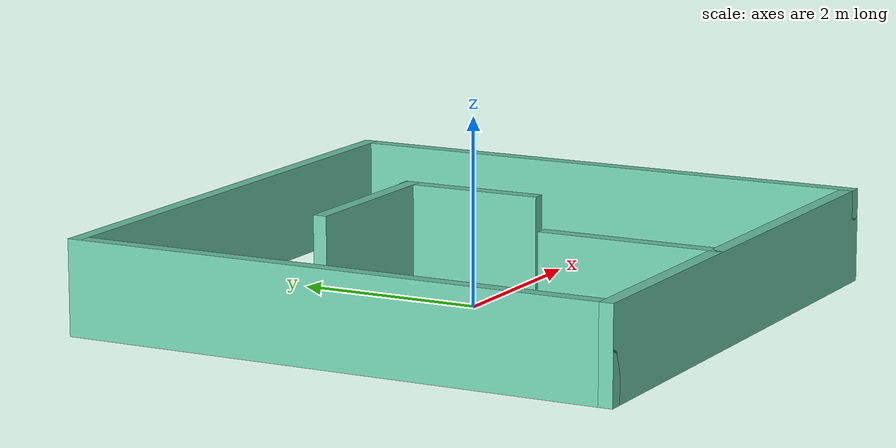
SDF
<?xml version='1.0'?>
<sdf version='1.7'>
  <model name='training_gazebo_place'>
    <pose>-0.006 -0.034 0 0 -0 0</pose>
    <link name='Wall_0'>
      <collision name='Wall_0_Collision'>
        <geometry>
          <box>
            <size>6 0.15 1</size>
          </box>
        </geometry>
        <pose>0 0 0.5 0 -0 0</pose>
      </collision>
      <visual name='Wall_0_Visual'>
        <pose>0 0 0.5 0 -0 0</pose>
        <geometry>
          <box>
            <size>6 0.15 1</size>
          </box>
        </geometry>
        <material>
          <script>
            <uri>file://media/materials/scripts/gazebo.material</uri>
            <name>Gazebo/Grey</name>
          </script>
          <ambient>0.435294 0.796078 0.67451 1</ambient>
        </material>
        <meta>
          <layer>0</layer>
        </meta>
      </visual>
      <pose>0 -2.925 0 0 -0 0</pose>
    </link>
    <link name='Wall_14'>
      <collision name='Wall_14_Collision'>
        <geometry>
          <box>
            <size>2 0.15 1</size>
          </box>
        </geometry>
        <pose>0 0 0.5 0 -0 0</pose>
      </collision>
      <visual name='Wall_14_Visual'>
        <pose>0 0 0.5 0 -0 0</pose>
        <geometry>
          <box>
            <size>2 0.15 1</size>
          </box>
        </geometry>
        <material>
          <script>
            <uri>file://media/materials/scripts/gazebo.material</uri>
            <name>Gazebo/Grey</name>
          </script>
          <ambient>0.435294 0.796078 0.67451 1</ambient>
        </material>
        <meta>
          <layer>0</layer>
        </meta>
      </visual>
      <pose>0.12408 1.34848 0 0 -0 0</pose>
    </link>
    <link name='Wall_15'>
      <collision name='Wall_15_Collision'>
        <geometry>
          <box>
            <size>1.62424 0.15 1</size>
          </box>
        </geometry>
        <pose>0 0 0.5 0 -0 0</pose>
      </collision>
      <visual name='Wall_15_Visual'>
        <pose>0 0 0.5 0 -0 0</pose>
        <geometry>
          <box>
            <size>1.62424 0.15 1</size>
          </box>
        </geometry>
        <material>
          <script>
            <uri>file://media/materials/scripts/gazebo.material</uri>
            <name>Gazebo/Grey</name>
          </script>
          <ambient>0.435294 0.796078 0.67451 1</ambient>
        </material>
        <meta>
          <layer>0</layer>
        </meta>
      </visual>
      <pose>1.05783 0.629147 0 0 -0 -1.55893</pose>
    </link>
    <link name='Wall_2'>
      <collision name='Wall_2_Collision'>
        <geometry>
          <box>
            <size>6 0.15 1</size>
          </box>
        </geometry>
        <pose>0 0 0.5 0 -0 0</pose>
      </collision>
      <visual name='Wall_2_Visual'>
        <pose>0 0 0.5 0 -0 0</pose>
        <geometry>
          <box>
            <size>6 0.15 1</size>
          </box>
        </geometry>
        <material>
          <script>
            <uri>file://media/materials/scripts/gazebo.material</uri>
            <name>Gazebo/Grey</name>
          </script>
          <ambient>0.435294 0.796078 0.67451 1</ambient>
        </material>
        <meta>
          <layer>0</layer>
        </meta>
      </visual>
      <pose>-2.925 -0 0 0 -0 1.5708</pose>
    </link>
    <link name='Wall_3'>
      <collision name='Wall_3_Collision'>
        <geometry>
          <box>
            <size>6 0.15 1</size>
          </box>
        </geometry>
        <pose>0 0 0.5 0 -0 0</pose>
      </collision>
      <visual name='Wall_3_Visual'>
        <pose>0 0 0.5 0 -0 0</pose>
        <geometry>
          <box>
            <size>6 0.15 1</size>
          </box>
        </geometry>
        <material>
          <script>
            <uri>file://media/materials/scripts/gazebo.material</uri>
            <name>Gazebo/Grey</name>
          </script>
          <ambient>0.435294 0.796078 0.67451 1</ambient>
        </material>
        <meta>
          <layer>0</layer>
        </meta>
      </visual>
      <pose>0 2.925 0 0 -0 0</pose>
    </link>
    <link name='Wall_4'>
      <collision name='Wall_4_Collision'>
        <geometry>
          <box>
            <size>6 0.15 1</size>
          </box>
        </geometry>
        <pose>0 0 0.5 0 -0 0</pose>
      </collision>
      <visual name='Wall_4_Visual'>
        <pose>0 0 0.5 0 -0 0</pose>
        <geometry>
          <box>
            <size>6 0.15 1</size>
          </box>
        </geometry>
        <material>
          <script>
            <uri>file://media/materials/scripts/gazebo.material</uri>
            <name>Gazebo/Grey</name>
          </script>
          <ambient>0.435294 0.796078 0.67451 1</ambient>
        </material>
        <meta>
          <layer>0</layer>
        </meta>
      </visual>
      <pose>2.925 -0 0 0 -0 -1.5708</pose>
    </link>
    <link name='Wall_8'>
      <collision name='Wall_8_Collision'>
        <geometry>
          <box>
            <size>2 0.15 1</size>
          </box>
        </geometry>
        <pose>0 0 0.5 0 -0 0</pose>
      </collision>
      <visual name='Wall_8_Visual'>
        <pose>0 0 0.5 0 -0 0</pose>
        <geometry>
          <box>
            <size>2 0.15 1</size>
          </box>
        </geometry>
        <material>
          <script>
            <uri>file://media/materials/scripts/gazebo.material</uri>
            <name>Gazebo/Grey</name>
          </script>
          <ambient>0.435294 0.796078 0.67451 1</ambient>
        </material>
        <meta>
          <layer>0</layer>
        </meta>
      </visual>
      <pose>-0.46251 -1.97802 0 0 -0 1.5708</pose>
    </link>
    <static>1</static>
  </model>
</sdf>
